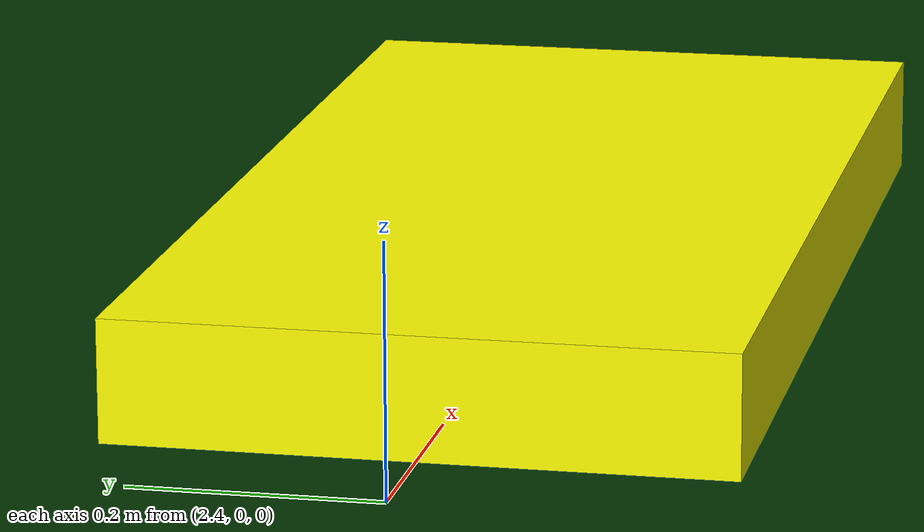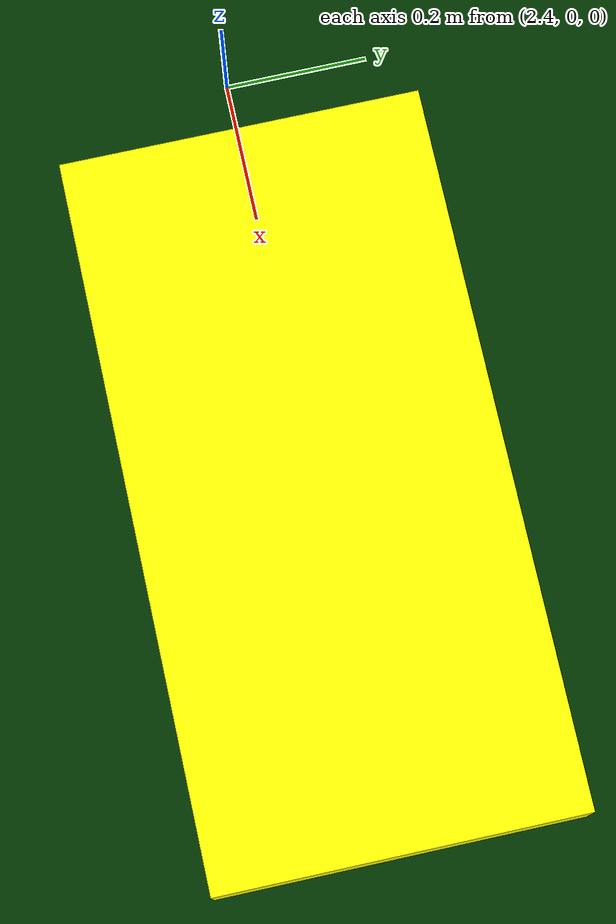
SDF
<sdf version='1.10'>
  <world name='empty'>

    <physics name='1ms' type='ignored'>
      <max_step_size>0.001</max_step_size>
      <real_time_factor>1</real_time_factor>
      <real_time_update_rate>1000</real_time_update_rate>
    </physics>
    <plugin name='gz::sim::systems::Physics' filename='gz-sim-physics-system'/>
    <plugin name='gz::sim::systems::UserCommands' filename='gz-sim-user-commands-system'/>
    <plugin name='gz::sim::systems::SceneBroadcaster' filename='gz-sim-scene-broadcaster-system'/>
    <plugin name='gz::sim::systems::Contact' filename='gz-sim-contact-system'/>

    <plugin
      filename="gz-sim-sensors-system"
      name="gz::sim::systems::Sensors">
      <render_engine>ogre2</render_engine>
    </plugin>

    <gravity>0 0 -9.8000000000000007</gravity>
    <magnetic_field>5.5644999999999998e-06 2.2875799999999999e-05 -4.2388400000000002e-05</magnetic_field>
    <atmosphere type='adiabatic'/>

    <scene>
      <ambient>0.400000006 0.400000006 0.400000006 1</ambient>
      <background>0.699999988 0.699999988 0.699999988 1</background>
      <shadows>true</shadows>
      <grid>false</grid>
    </scene>

######################################################

###############################################################

    <model name='ground_plane'>
      <static>true</static>
      <link name='link'>
        <collision name='collision'>
          <geometry>
            <mesh>
              <uri>model://home/hasanu/susp_test/src/my_robot_controller/models/human_model/meshes/ground.stl</uri>
              <size>0.5 0.5 0.5</size>
            </mesh>
          </geometry>
          <surface>
            <friction>
              <ode/>
            </friction>
            <bounce/>
            <contact/>
          </surface>
        </collision>
        <visual name='visual'>
          <geometry>
            <mesh>
              <uri>model://home/hasanu/susp_test/src/my_robot_controller/models/human_model/meshes/ground.stl</uri>
              <size>0.5 0.5 0.5</size>
            </mesh>
          </geometry>
          <material>
            <ambient>0.0 0.3 0.0 1</ambient>
            <diffuse>0.0 0.2 0.0 1</diffuse>
            <specular>0.1 0.1 0.1 1</specular>
          </material>
        </visual>
        <pose>0 0 0 0 0 0</pose>
        <inertial>
          <pose>0 0 0 0 0 0</pose>
          <mass>1</mass>
          <inertia>
            <ixx>1</ixx>
            <ixy>0</ixy>
            <ixz>0</ixz>
            <iyy>1</iyy>
            <iyz>0</iyz>
            <izz>1</izz>
          </inertia>
        </inertial>
        <enable_wind>false</enable_wind>
      </link>
      <pose>0 0 0 0 0 0</pose>
      <self_collide>false</self_collide>
    </model>

    <light name='sun' type='directional'>
      <pose>3 0 7 0 0 0</pose>
      <cast_shadows>true</cast_shadows>
      <intensity>1</intensity>
      <direction>-0.5 0.10000000000000001 -0.90000000000000002</direction>
      <diffuse>0.800000012 0.800000012 0.800000012 1</diffuse>
      <specular>0.200000003 0.200000003 0.200000003 1</specular>
      <attenuation>
        <range>1000</range>
        <linear>0.01</linear>
        <constant>0.90000000000000002</constant>
        <quadratic>0.001</quadratic>
      </attenuation>
      <spot>
        <inner_angle>0</inner_angle>
        <outer_angle>0</outer_angle>
        <falloff>0</falloff>
      </spot>
    </light>

    <model name="speed_bump">
      <static>true</static>
      <pose>3 0 0.05 0 0 0</pose>

      <link name="link">
        <collision name="collision">
          <geometry>
            <box>
              <size>1.0 0.5 0.1</size>
            </box>
          </geometry>
        </collision>

        <visual name="visual">
          <geometry>
            <box>
              <size>1.0 0.5 0.1</size>
            </box>
          </geometry>
          <material>
            <ambient>1 1 0 1</ambient>
            <diffuse>1 1 0 1</diffuse>
          </material>
        </visual>
      </link>
    </model>

  </world>

</sdf>
